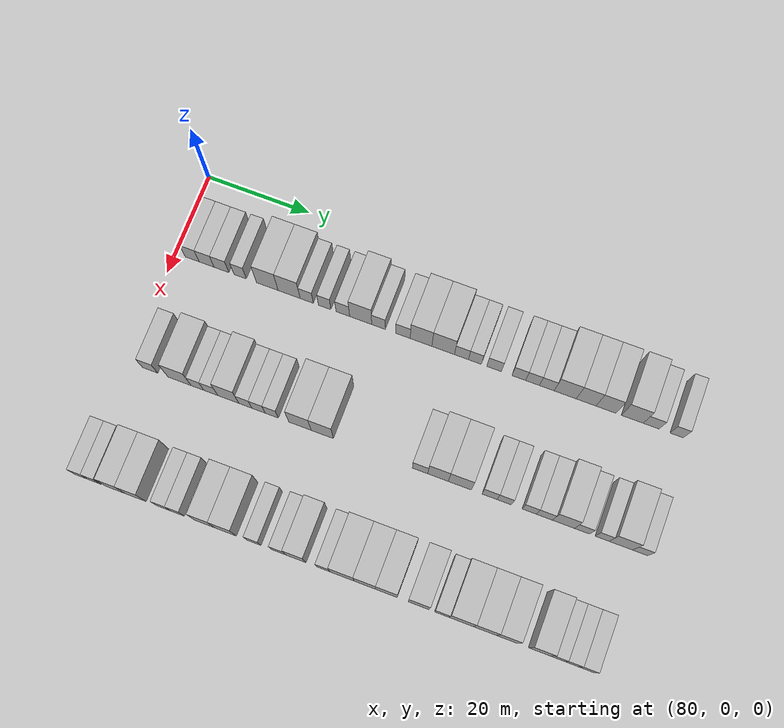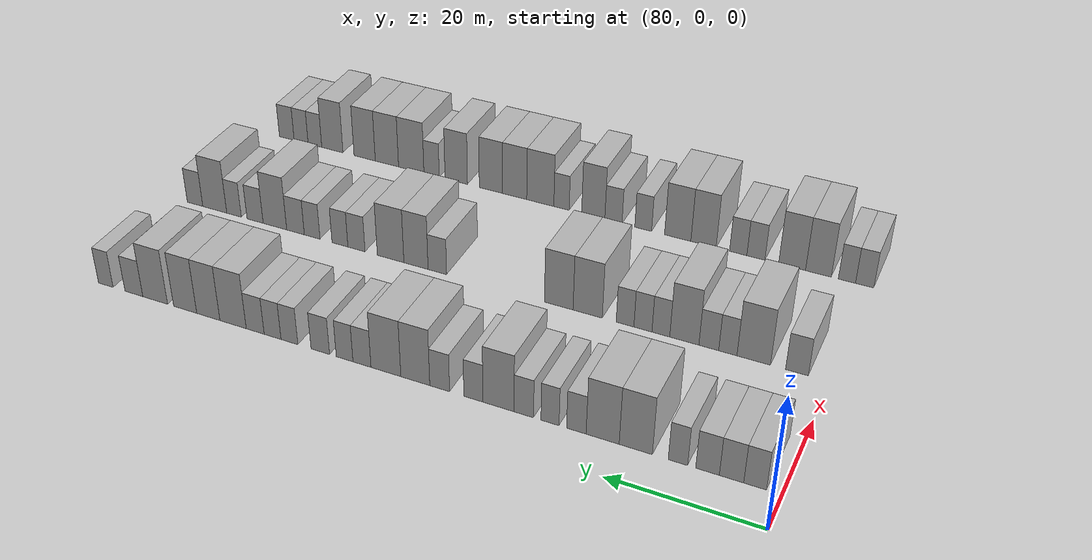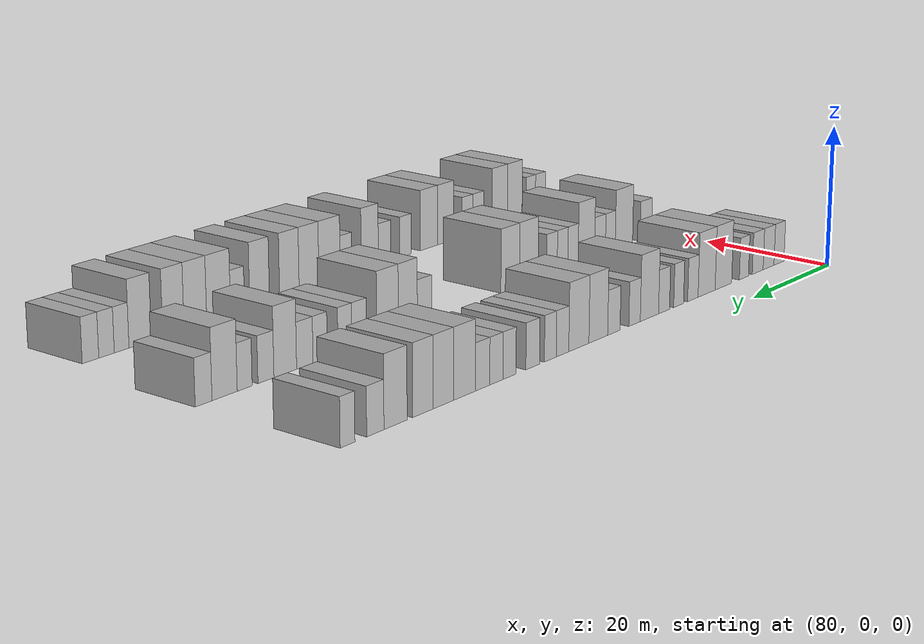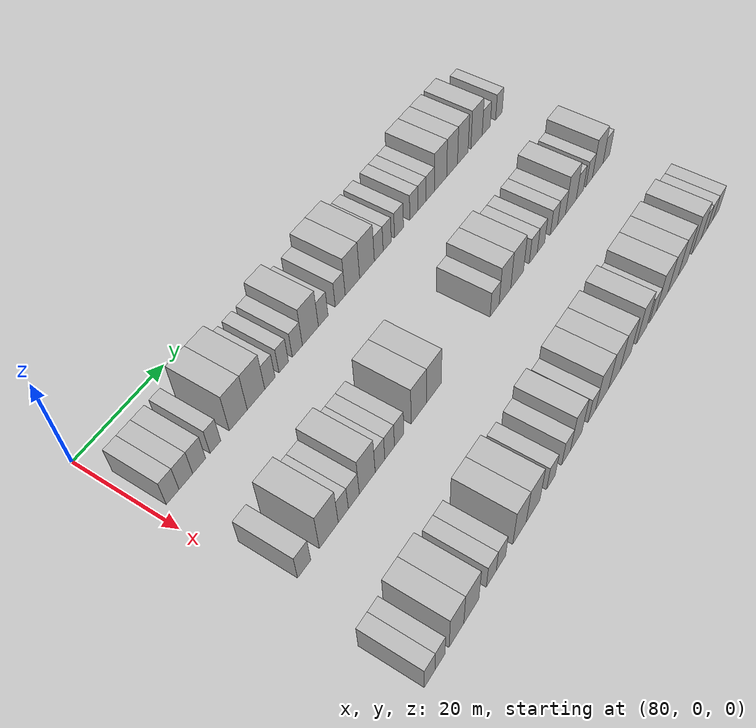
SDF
<sdf version="1.6">
 <world name="default">
  <model name="building_675">
   <static>1</static>
   <pose>91.0000 3.2946 0 0.000000 0.000000 0.000000</pose>
   <link name="link">
    <pose>0 0 3.00 0 0 0</pose>
    <collision name="collision"><geometry><box><size>10.0000 2.7651 6.0000</size></box></geometry></collision>
    <visual name="visual">
     <cast_shadows>0</cast_shadows>
     <geometry><box><size>10.0000 2.7651 6.0000</size></box></geometry>
     <material>
      <script>
       <uri>model://HANNAS_wall/materials/scripts</uri>
       <uri>model://HANNAS_wall/materials/textures</uri>
       <name>vrc/HANNAS_wall</name>
      </script>
     </material>
    </visual>
   </link>
  </model>
  <model name="building_676">
   <static>1</static>
   <pose>91.0000 6.1668 0 0.000000 0.000000 0.000000</pose>
   <link name="link">
    <pose>0 0 3.00 0 0 0</pose>
    <collision name="collision"><geometry><box><size>10.0000 2.9794 6.0000</size></box></geometry></collision>
    <visual name="visual">
     <cast_shadows>0</cast_shadows>
     <geometry><box><size>10.0000 2.9794 6.0000</size></box></geometry>
     <material>
      <script>
       <uri>model://HANNAS_wall/materials/scripts</uri>
       <uri>model://HANNAS_wall/materials/textures</uri>
       <name>vrc/HANNAS_wall</name>
      </script>
     </material>
    </visual>
   </link>
  </model>
  <model name="building_677">
   <static>1</static>
   <pose>91.0000 9.1155 0 0.000000 0.000000 0.000000</pose>
   <link name="link">
    <pose>0 0 3.00 0 0 0</pose>
    <collision name="collision"><geometry><box><size>10.0000 2.9179 6.0000</size></box></geometry></collision>
    <visual name="visual">
     <cast_shadows>0</cast_shadows>
     <geometry><box><size>10.0000 2.9179 6.0000</size></box></geometry>
     <material>
      <script>
       <uri>model://HANNAS_wall/materials/scripts</uri>
       <uri>model://HANNAS_wall/materials/textures</uri>
       <name>vrc/HANNAS_wall</name>
      </script>
     </material>
    </visual>
   </link>
  </model>
  <model name="building_678">
   <static>1</static>
   <pose>91.0000 12.7943 0 0.000000 0.000000 0.000000</pose>
   <link name="link">
    <pose>0 0 3.00 0 0 0</pose>
    <collision name="collision"><geometry><box><size>10.0000 2.4398 6.0000</size></box></geometry></collision>
    <visual name="visual">
     <cast_shadows>0</cast_shadows>
     <geometry><box><size>10.0000 2.4398 6.0000</size></box></geometry>
     <material>
      <script>
       <uri>model://HANNAS_wall/materials/scripts</uri>
       <uri>model://HANNAS_wall/materials/textures</uri>
       <name>vrc/HANNAS_wall</name>
      </script>
     </material>
    </visual>
   </link>
  </model>
  <model name="building_679">
   <static>1</static>
   <pose>91.0000 18.1451 0 0.000000 0.000000 0.000000</pose>
   <link name="link">
    <pose>0 0 4.50 0 0 0</pose>
    <collision name="collision"><geometry><box><size>10.0000 4.2617 9.0000</size></box></geometry></collision>
    <visual name="visual">
     <cast_shadows>0</cast_shadows>
     <geometry><box><size>10.0000 4.2617 9.0000</size></box></geometry>
     <material>
      <script>
       <uri>model://HANNAS_wall/materials/scripts</uri>
       <uri>model://HANNAS_wall/materials/textures</uri>
       <name>vrc/HANNAS_wall</name>
      </script>
     </material>
    </visual>
   </link>
  </model>
  <model name="building_680">
   <static>1</static>
   <pose>91.0000 22.4288 0 0.000000 0.000000 0.000000</pose>
   <link name="link">
    <pose>0 0 4.50 0 0 0</pose>
    <collision name="collision"><geometry><box><size>10.0000 4.3057 9.0000</size></box></geometry></collision>
    <visual name="visual">
     <cast_shadows>0</cast_shadows>
     <geometry><box><size>10.0000 4.3057 9.0000</size></box></geometry>
     <material>
      <script>
       <uri>model://HANNAS_wall/materials/scripts</uri>
       <uri>model://HANNAS_wall/materials/textures</uri>
       <name>vrc/HANNAS_wall</name>
      </script>
     </material>
    </visual>
   </link>
  </model>
  <model name="building_681">
   <static>1</static>
   <pose>91.0000 25.8703 0 0.000000 0.000000 0.000000</pose>
   <link name="link">
    <pose>0 0 3.00 0 0 0</pose>
    <collision name="collision"><geometry><box><size>10.0000 2.5773 6.0000</size></box></geometry></collision>
    <visual name="visual">
     <cast_shadows>0</cast_shadows>
     <geometry><box><size>10.0000 2.5773 6.0000</size></box></geometry>
     <material>
      <script>
       <uri>model://HANNAS_wall/materials/scripts</uri>
       <uri>model://HANNAS_wall/materials/textures</uri>
       <name>vrc/HANNAS_wall</name>
      </script>
     </material>
    </visual>
   </link>
  </model>
  <model name="building_682">
   <static>1</static>
   <pose>91.0000 29.3678 0 0.000000 0.000000 0.000000</pose>
   <link name="link">
    <pose>0 0 3.00 0 0 0</pose>
    <collision name="collision"><geometry><box><size>10.0000 2.4177 6.0000</size></box></geometry></collision>
    <visual name="visual">
     <cast_shadows>0</cast_shadows>
     <geometry><box><size>10.0000 2.4177 6.0000</size></box></geometry>
     <material>
      <script>
       <uri>model://HANNAS_wall/materials/scripts</uri>
       <uri>model://HANNAS_wall/materials/textures</uri>
       <name>vrc/HANNAS_wall</name>
      </script>
     </material>
    </visual>
   </link>
  </model>
  <model name="building_683">
   <static>1</static>
   <pose>91.0000 32.8957 0 0.000000 0.000000 0.000000</pose>
   <link name="link">
    <pose>0 0 3.00 0 0 0</pose>
    <collision name="collision"><geometry><box><size>10.0000 2.6381 6.0000</size></box></geometry></collision>
    <visual name="visual">
     <cast_shadows>0</cast_shadows>
     <geometry><box><size>10.0000 2.6381 6.0000</size></box></geometry>
     <material>
      <script>
       <uri>model://HANNAS_wall/materials/scripts</uri>
       <uri>model://HANNAS_wall/materials/textures</uri>
       <name>vrc/HANNAS_wall</name>
      </script>
     </material>
    </visual>
   </link>
  </model>
  <model name="building_684">
   <static>1</static>
   <pose>91.0000 36.3582 0 0.000000 0.000000 0.000000</pose>
   <link name="link">
    <pose>0 0 4.50 0 0 0</pose>
    <collision name="collision"><geometry><box><size>10.0000 4.2869 9.0000</size></box></geometry></collision>
    <visual name="visual">
     <cast_shadows>0</cast_shadows>
     <geometry><box><size>10.0000 4.2869 9.0000</size></box></geometry>
     <material>
      <script>
       <uri>model://HANNAS_wall/materials/scripts</uri>
       <uri>model://HANNAS_wall/materials/textures</uri>
       <name>vrc/HANNAS_wall</name>
      </script>
     </material>
    </visual>
   </link>
  </model>
  <model name="building_685">
   <static>1</static>
   <pose>91.0000 39.8204 0 0.000000 0.000000 0.000000</pose>
   <link name="link">
    <pose>0 0 3.00 0 0 0</pose>
    <collision name="collision"><geometry><box><size>10.0000 2.6376 6.0000</size></box></geometry></collision>
    <visual name="visual">
     <cast_shadows>0</cast_shadows>
     <geometry><box><size>10.0000 2.6376 6.0000</size></box></geometry>
     <material>
      <script>
       <uri>model://HANNAS_wall/materials/scripts</uri>
       <uri>model://HANNAS_wall/materials/textures</uri>
       <name>vrc/HANNAS_wall</name>
      </script>
     </material>
    </visual>
   </link>
  </model>
  <model name="building_686">
   <static>1</static>
   <pose>91.0000 44.5400 0 0.000000 0.000000 0.000000</pose>
   <link name="link">
    <pose>0 0 3.00 0 0 0</pose>
    <collision name="collision"><geometry><box><size>10.0000 2.8017 6.0000</size></box></geometry></collision>
    <visual name="visual">
     <cast_shadows>0</cast_shadows>
     <geometry><box><size>10.0000 2.8017 6.0000</size></box></geometry>
     <material>
      <script>
       <uri>model://HANNAS_wall/materials/scripts</uri>
       <uri>model://HANNAS_wall/materials/textures</uri>
       <name>vrc/HANNAS_wall</name>
      </script>
     </material>
    </visual>
   </link>
  </model>
  <model name="building_687">
   <static>1</static>
   <pose>91.0000 48.0153 0 0.000000 0.000000 0.000000</pose>
   <link name="link">
    <pose>0 0 4.50 0 0 0</pose>
    <collision name="collision"><geometry><box><size>10.0000 4.1487 9.0000</size></box></geometry></collision>
    <visual name="visual">
     <cast_shadows>0</cast_shadows>
     <geometry><box><size>10.0000 4.1487 9.0000</size></box></geometry>
     <material>
      <script>
       <uri>model://HANNAS_wall/materials/scripts</uri>
       <uri>model://HANNAS_wall/materials/textures</uri>
       <name>vrc/HANNAS_wall</name>
      </script>
     </material>
    </visual>
   </link>
  </model>
  <model name="building_688">
   <static>1</static>
   <pose>91.0000 52.2619 0 0.000000 0.000000 0.000000</pose>
   <link name="link">
    <pose>0 0 4.50 0 0 0</pose>
    <collision name="collision"><geometry><box><size>10.0000 4.3445 9.0000</size></box></geometry></collision>
    <visual name="visual">
     <cast_shadows>0</cast_shadows>
     <geometry><box><size>10.0000 4.3445 9.0000</size></box></geometry>
     <material>
      <script>
       <uri>model://HANNAS_wall/materials/scripts</uri>
       <uri>model://HANNAS_wall/materials/textures</uri>
       <name>vrc/HANNAS_wall</name>
      </script>
     </material>
    </visual>
   </link>
  </model>
  <model name="building_689">
   <static>1</static>
   <pose>91.0000 55.7647 0 0.000000 0.000000 0.000000</pose>
   <link name="link">
    <pose>0 0 3.00 0 0 0</pose>
    <collision name="collision"><geometry><box><size>10.0000 2.6611 6.0000</size></box></geometry></collision>
    <visual name="visual">
     <cast_shadows>0</cast_shadows>
     <geometry><box><size>10.0000 2.6611 6.0000</size></box></geometry>
     <material>
      <script>
       <uri>model://HANNAS_wall/materials/scripts</uri>
       <uri>model://HANNAS_wall/materials/textures</uri>
       <name>vrc/HANNAS_wall</name>
      </script>
     </material>
    </visual>
   </link>
  </model>
  <model name="building_690">
   <static>1</static>
   <pose>91.0000 58.3372 0 0.000000 0.000000 0.000000</pose>
   <link name="link">
    <pose>0 0 3.00 0 0 0</pose>
    <collision name="collision"><geometry><box><size>10.0000 2.4838 6.0000</size></box></geometry></collision>
    <visual name="visual">
     <cast_shadows>0</cast_shadows>
     <geometry><box><size>10.0000 2.4838 6.0000</size></box></geometry>
     <material>
      <script>
       <uri>model://HANNAS_wall/materials/scripts</uri>
       <uri>model://HANNAS_wall/materials/textures</uri>
       <name>vrc/HANNAS_wall</name>
      </script>
     </material>
    </visual>
   </link>
  </model>
  <model name="building_691">
   <static>1</static>
   <pose>91.0000 61.9788 0 0.000000 0.000000 0.000000</pose>
   <link name="link">
    <pose>0 0 3.00 0 0 0</pose>
    <collision name="collision"><geometry><box><size>10.0000 2.7994 6.0000</size></box></geometry></collision>
    <visual name="visual">
     <cast_shadows>0</cast_shadows>
     <geometry><box><size>10.0000 2.7994 6.0000</size></box></geometry>
     <material>
      <script>
       <uri>model://HANNAS_wall/materials/scripts</uri>
       <uri>model://HANNAS_wall/materials/textures</uri>
       <name>vrc/HANNAS_wall</name>
      </script>
     </material>
    </visual>
   </link>
  </model>
  <model name="building_692">
   <static>1</static>
   <pose>91.0000 66.6704 0 0.000000 0.000000 0.000000</pose>
   <link name="link">
    <pose>0 0 3.00 0 0 0</pose>
    <collision name="collision"><geometry><box><size>10.0000 2.5838 6.0000</size></box></geometry></collision>
    <visual name="visual">
     <cast_shadows>0</cast_shadows>
     <geometry><box><size>10.0000 2.5838 6.0000</size></box></geometry>
     <material>
      <script>
       <uri>model://HANNAS_wall/materials/scripts</uri>
       <uri>model://HANNAS_wall/materials/textures</uri>
       <name>vrc/HANNAS_wall</name>
      </script>
     </material>
    </visual>
   </link>
  </model>
  <model name="building_693">
   <static>1</static>
   <pose>91.0000 69.2684 0 0.000000 0.000000 0.000000</pose>
   <link name="link">
    <pose>0 0 3.00 0 0 0</pose>
    <collision name="collision"><geometry><box><size>10.0000 2.6121 6.0000</size></box></geometry></collision>
    <visual name="visual">
     <cast_shadows>0</cast_shadows>
     <geometry><box><size>10.0000 2.6121 6.0000</size></box></geometry>
     <material>
      <script>
       <uri>model://HANNAS_wall/materials/scripts</uri>
       <uri>model://HANNAS_wall/materials/textures</uri>
       <name>vrc/HANNAS_wall</name>
      </script>
     </material>
    </visual>
   </link>
  </model>
  <model name="building_694">
   <static>1</static>
   <pose>91.0000 71.9769 0 0.000000 0.000000 0.000000</pose>
   <link name="link">
    <pose>0 0 3.00 0 0 0</pose>
    <collision name="collision"><geometry><box><size>10.0000 2.8048 6.0000</size></box></geometry></collision>
    <visual name="visual">
     <cast_shadows>0</cast_shadows>
     <geometry><box><size>10.0000 2.8048 6.0000</size></box></geometry>
     <material>
      <script>
       <uri>model://HANNAS_wall/materials/scripts</uri>
       <uri>model://HANNAS_wall/materials/textures</uri>
       <name>vrc/HANNAS_wall</name>
      </script>
     </material>
    </visual>
   </link>
  </model>
  <model name="building_695">
   <static>1</static>
   <pose>91.0000 75.4605 0 0.000000 0.000000 0.000000</pose>
   <link name="link">
    <pose>0 0 4.50 0 0 0</pose>
    <collision name="collision"><geometry><box><size>10.0000 4.1624 9.0000</size></box></geometry></collision>
    <visual name="visual">
     <cast_shadows>0</cast_shadows>
     <geometry><box><size>10.0000 4.1624 9.0000</size></box></geometry>
     <material>
      <script>
       <uri>model://HANNAS_wall/materials/scripts</uri>
       <uri>model://HANNAS_wall/materials/textures</uri>
       <name>vrc/HANNAS_wall</name>
      </script>
     </material>
    </visual>
   </link>
  </model>
  <model name="building_696">
   <static>1</static>
   <pose>91.0000 79.4019 0 0.000000 0.000000 0.000000</pose>
   <link name="link">
    <pose>0 0 4.50 0 0 0</pose>
    <collision name="collision"><geometry><box><size>10.0000 3.7203 9.0000</size></box></geometry></collision>
    <visual name="visual">
     <cast_shadows>0</cast_shadows>
     <geometry><box><size>10.0000 3.7203 9.0000</size></box></geometry>
     <material>
      <script>
       <uri>model://HANNAS_wall/materials/scripts</uri>
       <uri>model://HANNAS_wall/materials/textures</uri>
       <name>vrc/HANNAS_wall</name>
      </script>
     </material>
    </visual>
   </link>
  </model>
  <model name="building_697">
   <static>1</static>
   <pose>91.0000 83.1351 0 0.000000 0.000000 0.000000</pose>
   <link name="link">
    <pose>0 0 4.50 0 0 0</pose>
    <collision name="collision"><geometry><box><size>10.0000 3.7462 9.0000</size></box></geometry></collision>
    <visual name="visual">
     <cast_shadows>0</cast_shadows>
     <geometry><box><size>10.0000 3.7462 9.0000</size></box></geometry>
     <material>
      <script>
       <uri>model://HANNAS_wall/materials/scripts</uri>
       <uri>model://HANNAS_wall/materials/textures</uri>
       <name>vrc/HANNAS_wall</name>
      </script>
     </material>
    </visual>
   </link>
  </model>
  <model name="building_698">
   <static>1</static>
   <pose>91.0000 88.0530 0 0.000000 0.000000 0.000000</pose>
   <link name="link">
    <pose>0 0 4.50 0 0 0</pose>
    <collision name="collision"><geometry><box><size>10.0000 4.0897 9.0000</size></box></geometry></collision>
    <visual name="visual">
     <cast_shadows>0</cast_shadows>
     <geometry><box><size>10.0000 4.0897 9.0000</size></box></geometry>
     <material>
      <script>
       <uri>model://HANNAS_wall/materials/scripts</uri>
       <uri>model://HANNAS_wall/materials/textures</uri>
       <name>vrc/HANNAS_wall</name>
      </script>
     </material>
    </visual>
   </link>
  </model>
  <model name="building_699">
   <static>1</static>
   <pose>91.0000 91.5903 0 0.000000 0.000000 0.000000</pose>
   <link name="link">
    <pose>0 0 3.00 0 0 0</pose>
    <collision name="collision"><geometry><box><size>10.0000 2.9850 6.0000</size></box></geometry></collision>
    <visual name="visual">
     <cast_shadows>0</cast_shadows>
     <geometry><box><size>10.0000 2.9850 6.0000</size></box></geometry>
     <material>
      <script>
       <uri>model://HANNAS_wall/materials/scripts</uri>
       <uri>model://HANNAS_wall/materials/textures</uri>
       <name>vrc/HANNAS_wall</name>
      </script>
     </material>
    </visual>
   </link>
  </model>
  <model name="building_700">
   <static>1</static>
   <pose>91.0000 96.3235 0 0.000000 0.000000 0.000000</pose>
   <link name="link">
    <pose>0 0 3.00 0 0 0</pose>
    <collision name="collision"><geometry><box><size>10.0000 2.4813 6.0000</size></box></geometry></collision>
    <visual name="visual">
     <cast_shadows>0</cast_shadows>
     <geometry><box><size>10.0000 2.4813 6.0000</size></box></geometry>
     <material>
      <script>
       <uri>model://HANNAS_wall/materials/scripts</uri>
       <uri>model://HANNAS_wall/materials/textures</uri>
       <name>vrc/HANNAS_wall</name>
      </script>
     </material>
    </visual>
   </link>
  </model>
  <model name="building_858">
   <static>1</static>
   <pose>113.0000 4.3524 0 0.000000 0.000000 0.000000</pose>
   <link name="link">
    <pose>0 0 3.00 0 0 0</pose>
    <collision name="collision"><geometry><box><size>10.0000 2.9906 6.0000</size></box></geometry></collision>
    <visual name="visual">
     <cast_shadows>0</cast_shadows>
     <geometry><box><size>10.0000 2.9906 6.0000</size></box></geometry>
     <material>
      <script>
       <uri>model://HANNAS_wall/materials/scripts</uri>
       <uri>model://HANNAS_wall/materials/textures</uri>
       <name>vrc/HANNAS_wall</name>
      </script>
     </material>
    </visual>
   </link>
  </model>
  <model name="building_859">
   <static>1</static>
   <pose>113.0000 10.0922 0 0.000000 0.000000 0.000000</pose>
   <link name="link">
    <pose>0 0 4.50 0 0 0</pose>
    <collision name="collision"><geometry><box><size>10.0000 4.4890 9.0000</size></box></geometry></collision>
    <visual name="visual">
     <cast_shadows>0</cast_shadows>
     <geometry><box><size>10.0000 4.4890 9.0000</size></box></geometry>
     <material>
      <script>
       <uri>model://HANNAS_wall/materials/scripts</uri>
       <uri>model://HANNAS_wall/materials/textures</uri>
       <name>vrc/HANNAS_wall</name>
      </script>
     </material>
    </visual>
   </link>
  </model>
  <model name="building_860">
   <static>1</static>
   <pose>113.0000 13.5752 0 0.000000 0.000000 0.000000</pose>
   <link name="link">
    <pose>0 0 3.00 0 0 0</pose>
    <collision name="collision"><geometry><box><size>10.0000 2.4771 6.0000</size></box></geometry></collision>
    <visual name="visual">
     <cast_shadows>0</cast_shadows>
     <geometry><box><size>10.0000 2.4771 6.0000</size></box></geometry>
     <material>
      <script>
       <uri>model://HANNAS_wall/materials/scripts</uri>
       <uri>model://HANNAS_wall/materials/textures</uri>
       <name>vrc/HANNAS_wall</name>
      </script>
     </material>
    </visual>
   </link>
  </model>
  <model name="building_861">
   <static>1</static>
   <pose>113.0000 16.1683 0 0.000000 0.000000 0.000000</pose>
   <link name="link">
    <pose>0 0 3.00 0 0 0</pose>
    <collision name="collision"><geometry><box><size>10.0000 2.7090 6.0000</size></box></geometry></collision>
    <visual name="visual">
     <cast_shadows>0</cast_shadows>
     <geometry><box><size>10.0000 2.7090 6.0000</size></box></geometry>
     <material>
      <script>
       <uri>model://HANNAS_wall/materials/scripts</uri>
       <uri>model://HANNAS_wall/materials/textures</uri>
       <name>vrc/HANNAS_wall</name>
      </script>
     </material>
    </visual>
   </link>
  </model>
  <model name="building_862">
   <static>1</static>
   <pose>113.0000 19.5455 0 0.000000 0.000000 0.000000</pose>
   <link name="link">
    <pose>0 0 4.50 0 0 0</pose>
    <collision name="collision"><geometry><box><size>10.0000 4.0455 9.0000</size></box></geometry></collision>
    <visual name="visual">
     <cast_shadows>0</cast_shadows>
     <geometry><box><size>10.0000 4.0455 9.0000</size></box></geometry>
     <material>
      <script>
       <uri>model://HANNAS_wall/materials/scripts</uri>
       <uri>model://HANNAS_wall/materials/textures</uri>
       <name>vrc/HANNAS_wall</name>
      </script>
     </material>
    </visual>
   </link>
  </model>
  <model name="building_863">
   <static>1</static>
   <pose>113.0000 22.8141 0 0.000000 0.000000 0.000000</pose>
   <link name="link">
    <pose>0 0 3.00 0 0 0</pose>
    <collision name="collision"><geometry><box><size>10.0000 2.4916 6.0000</size></box></geometry></collision>
    <visual name="visual">
     <cast_shadows>0</cast_shadows>
     <geometry><box><size>10.0000 2.4916 6.0000</size></box></geometry>
     <material>
      <script>
       <uri>model://HANNAS_wall/materials/scripts</uri>
       <uri>model://HANNAS_wall/materials/textures</uri>
       <name>vrc/HANNAS_wall</name>
      </script>
     </material>
    </visual>
   </link>
  </model>
  <model name="building_864">
   <static>1</static>
   <pose>113.0000 25.3368 0 0.000000 0.000000 0.000000</pose>
   <link name="link">
    <pose>0 0 3.00 0 0 0</pose>
    <collision name="collision"><geometry><box><size>10.0000 2.5538 6.0000</size></box></geometry></collision>
    <visual name="visual">
     <cast_shadows>0</cast_shadows>
     <geometry><box><size>10.0000 2.5538 6.0000</size></box></geometry>
     <material>
      <script>
       <uri>model://HANNAS_wall/materials/scripts</uri>
       <uri>model://HANNAS_wall/materials/textures</uri>
       <name>vrc/HANNAS_wall</name>
      </script>
     </material>
    </visual>
   </link>
  </model>
  <model name="building_865">
   <static>1</static>
   <pose>113.0000 27.8779 0 0.000000 0.000000 0.000000</pose>
   <link name="link">
    <pose>0 0 3.00 0 0 0</pose>
    <collision name="collision"><geometry><box><size>10.0000 2.5285 6.0000</size></box></geometry></collision>
    <visual name="visual">
     <cast_shadows>0</cast_shadows>
     <geometry><box><size>10.0000 2.5285 6.0000</size></box></geometry>
     <material>
      <script>
       <uri>model://HANNAS_wall/materials/scripts</uri>
       <uri>model://HANNAS_wall/materials/textures</uri>
       <name>vrc/HANNAS_wall</name>
      </script>
     </material>
    </visual>
   </link>
  </model>
  <model name="building_866">
   <static>1</static>
   <pose>113.0000 33.2699 0 0.000000 0.000000 0.000000</pose>
   <link name="link">
    <pose>0 0 4.50 0 0 0</pose>
    <collision name="collision"><geometry><box><size>10.0000 4.2554 9.0000</size></box></geometry></collision>
    <visual name="visual">
     <cast_shadows>0</cast_shadows>
     <geometry><box><size>10.0000 4.2554 9.0000</size></box></geometry>
     <material>
      <script>
       <uri>model://HANNAS_wall/materials/scripts</uri>
       <uri>model://HANNAS_wall/materials/textures</uri>
       <name>vrc/HANNAS_wall</name>
      </script>
     </material>
    </visual>
   </link>
  </model>
  <model name="building_867">
   <static>1</static>
   <pose>113.0000 37.5121 0 0.000000 0.000000 0.000000</pose>
   <link name="link">
    <pose>0 0 4.50 0 0 0</pose>
    <collision name="collision"><geometry><box><size>10.0000 4.2290 9.0000</size></box></geometry></collision>
    <visual name="visual">
     <cast_shadows>0</cast_shadows>
     <geometry><box><size>10.0000 4.2290 9.0000</size></box></geometry>
     <material>
      <script>
       <uri>model://HANNAS_wall/materials/scripts</uri>
       <uri>model://HANNAS_wall/materials/textures</uri>
       <name>vrc/HANNAS_wall</name>
      </script>
     </material>
    </visual>
   </link>
  </model>
  <model name="building_868">
   <static>1</static>
   <pose>113.0000 55.9876 0 0.000000 0.000000 0.000000</pose>
   <link name="link">
    <pose>0 0 3.00 0 0 0</pose>
    <collision name="collision"><geometry><box><size>10.0000 2.9073 6.0000</size></box></geometry></collision>
    <visual name="visual">
     <cast_shadows>0</cast_shadows>
     <geometry><box><size>10.0000 2.9073 6.0000</size></box></geometry>
     <material>
      <script>
       <uri>model://HANNAS_wall/materials/scripts</uri>
       <uri>model://HANNAS_wall/materials/textures</uri>
       <name>vrc/HANNAS_wall</name>
      </script>
     </material>
    </visual>
   </link>
  </model>
  <model name="building_869">
   <static>1</static>
   <pose>113.0000 59.3632 0 0.000000 0.000000 0.000000</pose>
   <link name="link">
    <pose>0 0 4.50 0 0 0</pose>
    <collision name="collision"><geometry><box><size>10.0000 3.8438 9.0000</size></box></geometry></collision>
    <visual name="visual">
     <cast_shadows>0</cast_shadows>
     <geometry><box><size>10.0000 3.8438 9.0000</size></box></geometry>
     <material>
      <script>
       <uri>model://HANNAS_wall/materials/scripts</uri>
       <uri>model://HANNAS_wall/materials/textures</uri>
       <name>vrc/HANNAS_wall</name>
      </script>
     </material>
    </visual>
   </link>
  </model>
  <model name="building_870">
   <static>1</static>
   <pose>113.0000 63.4255 0 0.000000 0.000000 0.000000</pose>
   <link name="link">
    <pose>0 0 4.50 0 0 0</pose>
    <collision name="collision"><geometry><box><size>10.0000 4.2808 9.0000</size></box></geometry></collision>
    <visual name="visual">
     <cast_shadows>0</cast_shadows>
     <geometry><box><size>10.0000 4.2808 9.0000</size></box></geometry>
     <material>
      <script>
       <uri>model://HANNAS_wall/materials/scripts</uri>
       <uri>model://HANNAS_wall/materials/textures</uri>
       <name>vrc/HANNAS_wall</name>
      </script>
     </material>
    </visual>
   </link>
  </model>
  <model name="building_871">
   <static>1</static>
   <pose>113.0000 68.9703 0 0.000000 0.000000 0.000000</pose>
   <link name="link">
    <pose>0 0 3.00 0 0 0</pose>
    <collision name="collision"><geometry><box><size>10.0000 2.8088 6.0000</size></box></geometry></collision>
    <visual name="visual">
     <cast_shadows>0</cast_shadows>
     <geometry><box><size>10.0000 2.8088 6.0000</size></box></geometry>
     <material>
      <script>
       <uri>model://HANNAS_wall/materials/scripts</uri>
       <uri>model://HANNAS_wall/materials/textures</uri>
       <name>vrc/HANNAS_wall</name>
      </script>
     </material>
    </visual>
   </link>
  </model>
  <model name="building_872">
   <static>1</static>
   <pose>113.0000 71.6875 0 0.000000 0.000000 0.000000</pose>
   <link name="link">
    <pose>0 0 3.00 0 0 0</pose>
    <collision name="collision"><geometry><box><size>10.0000 2.6256 6.0000</size></box></geometry></collision>
    <visual name="visual">
     <cast_shadows>0</cast_shadows>
     <geometry><box><size>10.0000 2.6256 6.0000</size></box></geometry>
     <material>
      <script>
       <uri>model://HANNAS_wall/materials/scripts</uri>
       <uri>model://HANNAS_wall/materials/textures</uri>
       <name>vrc/HANNAS_wall</name>
      </script>
     </material>
    </visual>
   </link>
  </model>
  <model name="building_873">
   <static>1</static>
   <pose>113.0000 76.3173 0 0.000000 0.000000 0.000000</pose>
   <link name="link">
    <pose>0 0 3.00 0 0 0</pose>
    <collision name="collision"><geometry><box><size>10.0000 2.6339 6.0000</size></box></geometry></collision>
    <visual name="visual">
     <cast_shadows>0</cast_shadows>
     <geometry><box><size>10.0000 2.6339 6.0000</size></box></geometry>
     <material>
      <script>
       <uri>model://HANNAS_wall/materials/scripts</uri>
       <uri>model://HANNAS_wall/materials/textures</uri>
       <name>vrc/HANNAS_wall</name>
      </script>
     </material>
    </visual>
   </link>
  </model>
  <model name="building_874">
   <static>1</static>
   <pose>113.0000 79.1262 0 0.000000 0.000000 0.000000</pose>
   <link name="link">
    <pose>0 0 3.00 0 0 0</pose>
    <collision name="collision"><geometry><box><size>10.0000 2.9839 6.0000</size></box></geometry></collision>
    <visual name="visual">
     <cast_shadows>0</cast_shadows>
     <geometry><box><size>10.0000 2.9839 6.0000</size></box></geometry>
     <material>
      <script>
       <uri>model://HANNAS_wall/materials/scripts</uri>
       <uri>model://HANNAS_wall/materials/textures</uri>
       <name>vrc/HANNAS_wall</name>
      </script>
     </material>
    </visual>
   </link>
  </model>
  <model name="building_875">
   <static>1</static>
   <pose>113.0000 82.6384 0 0.000000 0.000000 0.000000</pose>
   <link name="link">
    <pose>0 0 4.50 0 0 0</pose>
    <collision name="collision"><geometry><box><size>10.0000 4.0405 9.0000</size></box></geometry></collision>
    <visual name="visual">
     <cast_shadows>0</cast_shadows>
     <geometry><box><size>10.0000 4.0405 9.0000</size></box></geometry>
     <material>
      <script>
       <uri>model://HANNAS_wall/materials/scripts</uri>
       <uri>model://HANNAS_wall/materials/textures</uri>
       <name>vrc/HANNAS_wall</name>
      </script>
     </material>
    </visual>
   </link>
  </model>
  <model name="building_876">
   <static>1</static>
   <pose>113.0000 86.0551 0 0.000000 0.000000 0.000000</pose>
   <link name="link">
    <pose>0 0 3.00 0 0 0</pose>
    <collision name="collision"><geometry><box><size>10.0000 2.7930 6.0000</size></box></geometry></collision>
    <visual name="visual">
     <cast_shadows>0</cast_shadows>
     <geometry><box><size>10.0000 2.7930 6.0000</size></box></geometry>
     <material>
      <script>
       <uri>model://HANNAS_wall/materials/scripts</uri>
       <uri>model://HANNAS_wall/materials/textures</uri>
       <name>vrc/HANNAS_wall</name>
      </script>
     </material>
    </visual>
   </link>
  </model>
  <model name="building_877">
   <static>1</static>
   <pose>113.0000 89.7282 0 0.000000 0.000000 0.000000</pose>
   <link name="link">
    <pose>0 0 3.00 0 0 0</pose>
    <collision name="collision"><geometry><box><size>10.0000 2.5533 6.0000</size></box></geometry></collision>
    <visual name="visual">
     <cast_shadows>0</cast_shadows>
     <geometry><box><size>10.0000 2.5533 6.0000</size></box></geometry>
     <material>
      <script>
       <uri>model://HANNAS_wall/materials/scripts</uri>
       <uri>model://HANNAS_wall/materials/textures</uri>
       <name>vrc/HANNAS_wall</name>
      </script>
     </material>
    </visual>
   </link>
  </model>
  <model name="building_878">
   <static>1</static>
   <pose>113.0000 93.1272 0 0.000000 0.000000 0.000000</pose>
   <link name="link">
    <pose>0 0 4.50 0 0 0</pose>
    <collision name="collision"><geometry><box><size>10.0000 4.2445 9.0000</size></box></geometry></collision>
    <visual name="visual">
     <cast_shadows>0</cast_shadows>
     <geometry><box><size>10.0000 4.2445 9.0000</size></box></geometry>
     <material>
      <script>
       <uri>model://HANNAS_wall/materials/scripts</uri>
       <uri>model://HANNAS_wall/materials/textures</uri>
       <name>vrc/HANNAS_wall</name>
      </script>
     </material>
    </visual>
   </link>
  </model>
  <model name="building_879">
   <static>1</static>
   <pose>113.0000 96.6361 0 0.000000 0.000000 0.000000</pose>
   <link name="link">
    <pose>0 0 3.00 0 0 0</pose>
    <collision name="collision"><geometry><box><size>10.0000 2.7733 6.0000</size></box></geometry></collision>
    <visual name="visual">
     <cast_shadows>0</cast_shadows>
     <geometry><box><size>10.0000 2.7733 6.0000</size></box></geometry>
     <material>
      <script>
       <uri>model://HANNAS_wall/materials/scripts</uri>
       <uri>model://HANNAS_wall/materials/textures</uri>
       <name>vrc/HANNAS_wall</name>
      </script>
     </material>
    </visual>
   </link>
  </model>
  <model name="building_1057">
   <static>1</static>
   <pose>135.0000 0.8034 0 0.000000 0.000000 0.000000</pose>
   <link name="link">
    <pose>0 0 3.00 0 0 0</pose>
    <collision name="collision"><geometry><box><size>10.0000 2.5533 6.0000</size></box></geometry></collision>
    <visual name="visual">
     <cast_shadows>0</cast_shadows>
     <geometry><box><size>10.0000 2.5533 6.0000</size></box></geometry>
     <material>
      <script>
       <uri>model://HANNAS_wall/materials/scripts</uri>
       <uri>model://HANNAS_wall/materials/textures</uri>
       <name>vrc/HANNAS_wall</name>
      </script>
     </material>
    </visual>
   </link>
  </model>
  <model name="building_1058">
   <static>1</static>
   <pose>135.0000 3.2894 0 0.000000 0.000000 0.000000</pose>
   <link name="link">
    <pose>0 0 3.00 0 0 0</pose>
    <collision name="collision"><geometry><box><size>10.0000 2.4187 6.0000</size></box></geometry></collision>
    <visual name="visual">
     <cast_shadows>0</cast_shadows>
     <geometry><box><size>10.0000 2.4187 6.0000</size></box></geometry>
     <material>
      <script>
       <uri>model://HANNAS_wall/materials/scripts</uri>
       <uri>model://HANNAS_wall/materials/textures</uri>
       <name>vrc/HANNAS_wall</name>
      </script>
     </material>
    </visual>
   </link>
  </model>
  <model name="building_1059">
   <static>1</static>
   <pose>135.0000 7.3367 0 0.000000 0.000000 0.000000</pose>
   <link name="link">
    <pose>0 0 4.50 0 0 0</pose>
    <collision name="collision"><geometry><box><size>10.0000 3.6760 9.0000</size></box></geometry></collision>
    <visual name="visual">
     <cast_shadows>0</cast_shadows>
     <geometry><box><size>10.0000 3.6760 9.0000</size></box></geometry>
     <material>
      <script>
       <uri>model://HANNAS_wall/materials/scripts</uri>
       <uri>model://HANNAS_wall/materials/textures</uri>
       <name>vrc/HANNAS_wall</name>
      </script>
     </material>
    </visual>
   </link>
  </model>
  <model name="building_1060">
   <static>1</static>
   <pose>135.0000 11.1148 0 0.000000 0.000000 0.000000</pose>
   <link name="link">
    <pose>0 0 4.50 0 0 0</pose>
    <collision name="collision"><geometry><box><size>10.0000 3.8802 9.0000</size></box></geometry></collision>
    <visual name="visual">
     <cast_shadows>0</cast_shadows>
     <geometry><box><size>10.0000 3.8802 9.0000</size></box></geometry>
     <material>
      <script>
       <uri>model://HANNAS_wall/materials/scripts</uri>
       <uri>model://HANNAS_wall/materials/textures</uri>
       <name>vrc/HANNAS_wall</name>
      </script>
     </material>
    </visual>
   </link>
  </model>
  <model name="building_1061">
   <static>1</static>
   <pose>135.0000 16.3789 0 0.000000 0.000000 0.000000</pose>
   <link name="link">
    <pose>0 0 3.00 0 0 0</pose>
    <collision name="collision"><geometry><box><size>10.0000 2.6481 6.0000</size></box></geometry></collision>
    <visual name="visual">
     <cast_shadows>0</cast_shadows>
     <geometry><box><size>10.0000 2.6481 6.0000</size></box></geometry>
     <material>
      <script>
       <uri>model://HANNAS_wall/materials/scripts</uri>
       <uri>model://HANNAS_wall/materials/textures</uri>
       <name>vrc/HANNAS_wall</name>
      </script>
     </material>
    </visual>
   </link>
  </model>
  <model name="building_1062">
   <static>1</static>
   <pose>135.0000 18.9905 0 0.000000 0.000000 0.000000</pose>
   <link name="link">
    <pose>0 0 3.00 0 0 0</pose>
    <collision name="collision"><geometry><box><size>10.0000 2.5750 6.0000</size></box></geometry></collision>
    <visual name="visual">
     <cast_shadows>0</cast_shadows>
     <geometry><box><size>10.0000 2.5750 6.0000</size></box></geometry>
     <material>
      <script>
       <uri>model://HANNAS_wall/materials/scripts</uri>
       <uri>model://HANNAS_wall/materials/textures</uri>
       <name>vrc/HANNAS_wall</name>
      </script>
     </material>
    </visual>
   </link>
  </model>
  <model name="building_1063">
   <static>1</static>
   <pose>135.0000 24.1816 0 0.000000 0.000000 0.000000</pose>
   <link name="link">
    <pose>0 0 4.50 0 0 0</pose>
    <collision name="collision"><geometry><box><size>10.0000 3.8072 9.0000</size></box></geometry></collision>
    <visual name="visual">
     <cast_shadows>0</cast_shadows>
     <geometry><box><size>10.0000 3.8072 9.0000</size></box></geometry>
     <material>
      <script>
       <uri>model://HANNAS_wall/materials/scripts</uri>
       <uri>model://HANNAS_wall/materials/textures</uri>
       <name>vrc/HANNAS_wall</name>
      </script>
     </material>
    </visual>
   </link>
  </model>
  <model name="building_1064">
   <static>1</static>
   <pose>135.0000 28.0940 0 0.000000 0.000000 0.000000</pose>
   <link name="link">
    <pose>0 0 4.50 0 0 0</pose>
    <collision name="collision"><geometry><box><size>10.0000 4.0177 9.0000</size></box></geometry></collision>
    <visual name="visual">
     <cast_shadows>0</cast_shadows>
     <geometry><box><size>10.0000 4.0177 9.0000</size></box></geometry>
     <material>
      <script>
       <uri>model://HANNAS_wall/materials/scripts</uri>
       <uri>model://HANNAS_wall/materials/textures</uri>
       <name>vrc/HANNAS_wall</name>
      </script>
     </material>
    </visual>
   </link>
  </model>
  <model name="building_1065">
   <static>1</static>
   <pose>135.0000 33.4065 0 0.000000 0.000000 0.000000</pose>
   <link name="link">
    <pose>0 0 3.00 0 0 0</pose>
    <collision name="collision"><geometry><box><size>10.0000 2.6072 6.0000</size></box></geometry></collision>
    <visual name="visual">
     <cast_shadows>0</cast_shadows>
     <geometry><box><size>10.0000 2.6072 6.0000</size></box></geometry>
     <material>
      <script>
       <uri>model://HANNAS_wall/materials/scripts</uri>
       <uri>model://HANNAS_wall/materials/textures</uri>
       <name>vrc/HANNAS_wall</name>
      </script>
     </material>
    </visual>
   </link>
  </model>
  <model name="building_1066">
   <static>1</static>
   <pose>135.0000 38.0664 0 0.000000 0.000000 0.000000</pose>
   <link name="link">
    <pose>0 0 3.00 0 0 0</pose>
    <collision name="collision"><geometry><box><size>10.0000 2.7126 6.0000</size></box></geometry></collision>
    <visual name="visual">
     <cast_shadows>0</cast_shadows>
     <geometry><box><size>10.0000 2.7126 6.0000</size></box></geometry>
     <material>
      <script>
       <uri>model://HANNAS_wall/materials/scripts</uri>
       <uri>model://HANNAS_wall/materials/textures</uri>
       <name>vrc/HANNAS_wall</name>
      </script>
     </material>
    </visual>
   </link>
  </model>
  <model name="building_1067">
   <static>1</static>
   <pose>135.0000 41.2727 0 0.000000 0.000000 0.000000</pose>
   <link name="link">
    <pose>0 0 4.50 0 0 0</pose>
    <collision name="collision"><geometry><box><size>10.0000 3.7000 9.0000</size></box></geometry></collision>
    <visual name="visual">
     <cast_shadows>0</cast_shadows>
     <geometry><box><size>10.0000 3.7000 9.0000</size></box></geometry>
     <material>
      <script>
       <uri>model://HANNAS_wall/materials/scripts</uri>
       <uri>model://HANNAS_wall/materials/textures</uri>
       <name>vrc/HANNAS_wall</name>
      </script>
     </material>
    </visual>
   </link>
  </model>
  <model name="building_1068">
   <static>1</static>
   <pose>135.0000 46.3615 0 0.000000 0.000000 0.000000</pose>
   <link name="link">
    <pose>0 0 3.00 0 0 0</pose>
    <collision name="collision"><geometry><box><size>10.0000 2.4777 6.0000</size></box></geometry></collision>
    <visual name="visual">
     <cast_shadows>0</cast_shadows>
     <geometry><box><size>10.0000 2.4777 6.0000</size></box></geometry>
     <material>
      <script>
       <uri>model://HANNAS_wall/materials/scripts</uri>
       <uri>model://HANNAS_wall/materials/textures</uri>
       <name>vrc/HANNAS_wall</name>
      </script>
     </material>
    </visual>
   </link>
  </model>
  <model name="building_1069">
   <static>1</static>
   <pose>135.0000 49.8179 0 0.000000 0.000000 0.000000</pose>
   <link name="link">
    <pose>0 0 4.50 0 0 0</pose>
    <collision name="collision"><geometry><box><size>10.0000 4.4352 9.0000</size></box></geometry></collision>
    <visual name="visual">
     <cast_shadows>0</cast_shadows>
     <geometry><box><size>10.0000 4.4352 9.0000</size></box></geometry>
     <material>
      <script>
       <uri>model://HANNAS_wall/materials/scripts</uri>
       <uri>model://HANNAS_wall/materials/textures</uri>
       <name>vrc/HANNAS_wall</name>
      </script>
     </material>
    </visual>
   </link>
  </model>
  <model name="building_1070">
   <static>1</static>
   <pose>135.0000 54.0434 0 0.000000 0.000000 0.000000</pose>
   <link name="link">
    <pose>0 0 4.50 0 0 0</pose>
    <collision name="collision"><geometry><box><size>10.0000 4.0157 9.0000</size></box></geometry></collision>
    <visual name="visual">
     <cast_shadows>0</cast_shadows>
     <geometry><box><size>10.0000 4.0157 9.0000</size></box></geometry>
     <material>
      <script>
       <uri>model://HANNAS_wall/materials/scripts</uri>
       <uri>model://HANNAS_wall/materials/textures</uri>
       <name>vrc/HANNAS_wall</name>
      </script>
     </material>
    </visual>
   </link>
  </model>
  <model name="building_1071">
   <static>1</static>
   <pose>135.0000 57.9996 0 0.000000 0.000000 0.000000</pose>
   <link name="link">
    <pose>0 0 4.50 0 0 0</pose>
    <collision name="collision"><geometry><box><size>10.0000 3.8967 9.0000</size></box></geometry></collision>
    <visual name="visual">
     <cast_shadows>0</cast_shadows>
     <geometry><box><size>10.0000 3.8967 9.0000</size></box></geometry>
     <material>
      <script>
       <uri>model://HANNAS_wall/materials/scripts</uri>
       <uri>model://HANNAS_wall/materials/textures</uri>
       <name>vrc/HANNAS_wall</name>
      </script>
     </material>
    </visual>
   </link>
  </model>
  <model name="building_1072">
   <static>1</static>
   <pose>135.0000 63.8599 0 0.000000 0.000000 0.000000</pose>
   <link name="link">
    <pose>0 0 4.50 0 0 0</pose>
    <collision name="collision"><geometry><box><size>10.0000 3.8239 9.0000</size></box></geometry></collision>
    <visual name="visual">
     <cast_shadows>0</cast_shadows>
     <geometry><box><size>10.0000 3.8239 9.0000</size></box></geometry>
     <material>
      <script>
       <uri>model://HANNAS_wall/materials/scripts</uri>
       <uri>model://HANNAS_wall/materials/textures</uri>
       <name>vrc/HANNAS_wall</name>
      </script>
     </material>
    </visual>
   </link>
  </model>
  <model name="building_1073">
   <static>1</static>
   <pose>135.0000 68.0950 0 0.000000 0.000000 0.000000</pose>
   <link name="link">
    <pose>0 0 3.00 0 0 0</pose>
    <collision name="collision"><geometry><box><size>10.0000 2.6464 6.0000</size></box></geometry></collision>
    <visual name="visual">
     <cast_shadows>0</cast_shadows>
     <geometry><box><size>10.0000 2.6464 6.0000</size></box></geometry>
     <material>
      <script>
       <uri>model://HANNAS_wall/materials/scripts</uri>
       <uri>model://HANNAS_wall/materials/textures</uri>
       <name>vrc/HANNAS_wall</name>
      </script>
     </material>
    </visual>
   </link>
  </model>
  <model name="building_1074">
   <static>1</static>
   <pose>135.0000 71.6383 0 0.000000 0.000000 0.000000</pose>
   <link name="link">
    <pose>0 0 4.50 0 0 0</pose>
    <collision name="collision"><geometry><box><size>10.0000 4.4401 9.0000</size></box></geometry></collision>
    <visual name="visual">
     <cast_shadows>0</cast_shadows>
     <geometry><box><size>10.0000 4.4401 9.0000</size></box></geometry>
     <material>
      <script>
       <uri>model://HANNAS_wall/materials/scripts</uri>
       <uri>model://HANNAS_wall/materials/textures</uri>
       <name>vrc/HANNAS_wall</name>
      </script>
     </material>
    </visual>
   </link>
  </model>
  <model name="building_1075">
   <static>1</static>
   <pose>135.0000 75.9218 0 0.000000 0.000000 0.000000</pose>
   <link name="link">
    <pose>0 0 4.50 0 0 0</pose>
    <collision name="collision"><geometry><box><size>10.0000 4.1270 9.0000</size></box></geometry></collision>
    <visual name="visual">
     <cast_shadows>0</cast_shadows>
     <geometry><box><size>10.0000 4.1270 9.0000</size></box></geometry>
     <material>
      <script>
       <uri>model://HANNAS_wall/materials/scripts</uri>
       <uri>model://HANNAS_wall/materials/textures</uri>
       <name>vrc/HANNAS_wall</name>
      </script>
     </material>
    </visual>
   </link>
  </model>
  <model name="building_1076">
   <static>1</static>
   <pose>135.0000 79.8876 0 0.000000 0.000000 0.000000</pose>
   <link name="link">
    <pose>0 0 4.50 0 0 0</pose>
    <collision name="collision"><geometry><box><size>10.0000 3.8045 9.0000</size></box></geometry></collision>
    <visual name="visual">
     <cast_shadows>0</cast_shadows>
     <geometry><box><size>10.0000 3.8045 9.0000</size></box></geometry>
     <material>
      <script>
       <uri>model://HANNAS_wall/materials/scripts</uri>
       <uri>model://HANNAS_wall/materials/textures</uri>
       <name>vrc/HANNAS_wall</name>
      </script>
     </material>
    </visual>
   </link>
  </model>
  <model name="building_1077">
   <static>1</static>
   <pose>135.0000 85.7264 0 0.000000 0.000000 0.000000</pose>
   <link name="link">
    <pose>0 0 4.50 0 0 0</pose>
    <collision name="collision"><geometry><box><size>10.0000 3.8731 9.0000</size></box></geometry></collision>
    <visual name="visual">
     <cast_shadows>0</cast_shadows>
     <geometry><box><size>10.0000 3.8731 9.0000</size></box></geometry>
     <material>
      <script>
       <uri>model://HANNAS_wall/materials/scripts</uri>
       <uri>model://HANNAS_wall/materials/textures</uri>
       <name>vrc/HANNAS_wall</name>
      </script>
     </material>
    </visual>
   </link>
  </model>
  <model name="building_1078">
   <static>1</static>
   <pose>135.0000 88.9164 0 0.000000 0.000000 0.000000</pose>
   <link name="link">
    <pose>0 0 3.00 0 0 0</pose>
    <collision name="collision"><geometry><box><size>10.0000 2.5068 6.0000</size></box></geometry></collision>
    <visual name="visual">
     <cast_shadows>0</cast_shadows>
     <geometry><box><size>10.0000 2.5068 6.0000</size></box></geometry>
     <material>
      <script>
       <uri>model://HANNAS_wall/materials/scripts</uri>
       <uri>model://HANNAS_wall/materials/textures</uri>
       <name>vrc/HANNAS_wall</name>
      </script>
     </material>
    </visual>
   </link>
  </model>
  <model name="building_1079">
   <static>1</static>
   <pose>135.0000 91.4705 0 0.000000 0.000000 0.000000</pose>
   <link name="link">
    <pose>0 0 3.00 0 0 0</pose>
    <collision name="collision"><geometry><box><size>10.0000 2.6014 6.0000</size></box></geometry></collision>
    <visual name="visual">
     <cast_shadows>0</cast_shadows>
     <geometry><box><size>10.0000 2.6014 6.0000</size></box></geometry>
     <material>
      <script>
       <uri>model://HANNAS_wall/materials/scripts</uri>
       <uri>model://HANNAS_wall/materials/textures</uri>
       <name>vrc/HANNAS_wall</name>
      </script>
     </material>
    </visual>
   </link>
  </model>
  <model name="building_1080">
   <static>1</static>
   <pose>135.0000 94.1426 0 0.000000 0.000000 0.000000</pose>
   <link name="link">
    <pose>0 0 3.00 0 0 0</pose>
    <collision name="collision"><geometry><box><size>10.0000 2.7428 6.0000</size></box></geometry></collision>
    <visual name="visual">
     <cast_shadows>0</cast_shadows>
     <geometry><box><size>10.0000 2.7428 6.0000</size></box></geometry>
     <material>
      <script>
       <uri>model://HANNAS_wall/materials/scripts</uri>
       <uri>model://HANNAS_wall/materials/textures</uri>
       <name>vrc/HANNAS_wall</name>
      </script>
     </material>
    </visual>
   </link>
  </model>
 </world>
</sdf>
